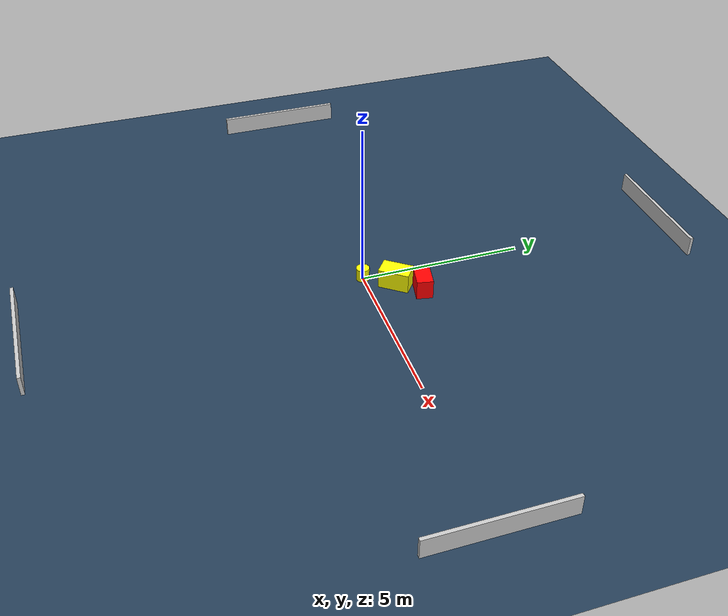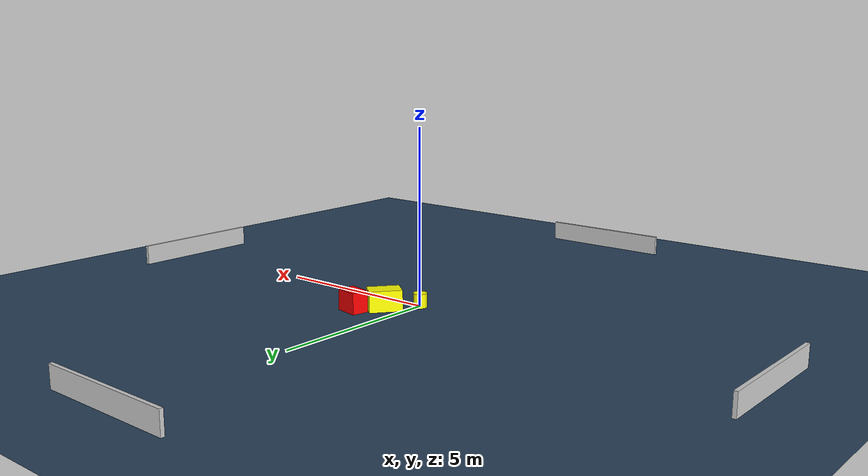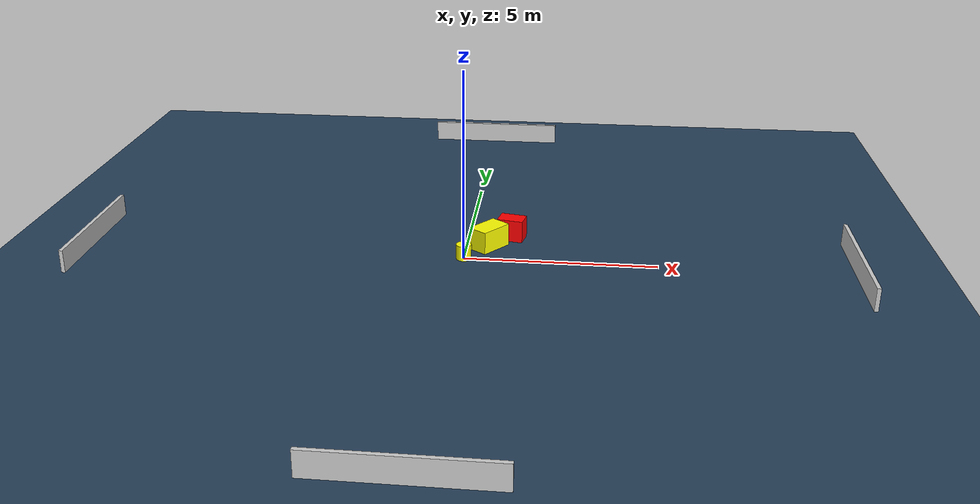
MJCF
<?xml version="1.0" ?>
<mujoco model="generated_environment">
  <option timestep="0.01" integrator="RK4" cone="elliptic"/>
  <default>
    <geom density="1"/>
  </default>
  <asset>
    <texture builtin="gradient" height="3072" name="skybox" rgb1="0.3 0.5 0.7" rgb2="0 0 0" type="skybox" width="512"/>
    <texture builtin="checker" height="300" name="groundplane" rgb1="0.2 0.3 0.4" rgb2="0.1 0.2 0.3" type="2d" width="300"/>
    <material name="groundplane" reflectance="0.2" texrepeat="5 5" texture="groundplane"/>
  </asset>
  <worldbody>
    <light dir="0 0 -1" directional="true" pos="0 0 1.5"/>
    <geom condim="3" friction="0.5 0.005 0.001" material="groundplane" name="floor" pos="0 0 0" size="0 0 0.05" type="plane"/>
    <body name="walls">
      <geom name="wall_1" condim="4" pos="-10.0 0.0 0.3" rgba="0.800000011920929 0.800000011920929 0.800000011920929 1.0" size="0.05 2.0 0.3" type="box"/>
      <geom name="wall_2" condim="4" pos="10.0 0.0 0.3" rgba="0.800000011920929 0.800000011920929 0.800000011920929 1.0" size="0.05 2.0 0.3" type="box"/>
      <geom name="wall_3" condim="4" pos="0.0 -10.0 0.3" rgba="0.800000011920929 0.800000011920929 0.800000011920929 1.0" size="2.0 0.05 0.3" type="box"/>
      <geom name="wall_4" condim="4" pos="0.0 10.0 0.3" rgba="0.800000011920929 0.800000011920929 0.800000011920929 1.0" size="2.0 0.05 0.3" type="box"/>
    </body>
    <body name="robot">
      <joint name="joint_x" type="slide" pos="0 0 0" axis="1 0 0"/>
      <joint name="joint_y" type="slide" pos="0 0 0" axis="0 1 0"/>
      <geom name="robot" type="cylinder" pos="0.0 0.0 0.2" size="0.2 0.2 0.0" mass="5.0" friction="1.0 0.005 0.0001" condim="4" rgba="1.0 1.0 0.0 1.0"/>
    </body>
    <body name="obstacle_1_movable">
      <geom name="obstacle_1_movable" condim="4" pos="0.5823776290057535 0.8454379349129346 0.3" euler="0 0 142.29758091397662" friction="0.0 0.005 0.001" rgba="1.0 1.0 0.0 1.0" size="0.2859135697986682 0.46579750496244404 0.3" type="box" mass="0.1"/>
      <joint type="free"/>
    </body>
    <body name="obstacle_2_static">
      <geom name="obstacle_2_static" condim="4" pos="1.146220702092593 1.492908041580109 0.3" euler="0 0 348.54334862040906" friction="0.0 0.005 0.001" rgba="1.0 0.0 0.0 1.0" size="0.34810931217589164 0.24579333211457705 0.3" type="box"/>
    </body>
  </worldbody>
  <actuator>
    <motor name="actuator_x" joint="joint_x" gear="1" ctrlrange="-1 1"/>
    <motor name="actuator_y" joint="joint_y" gear="1" ctrlrange="-1 1"/>
  </actuator>
</mujoco>
